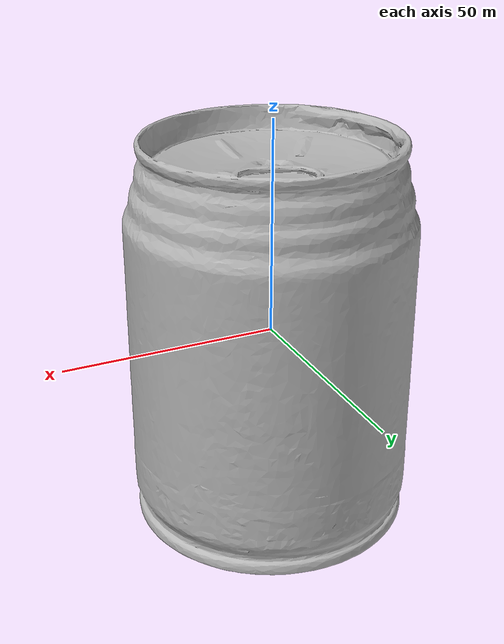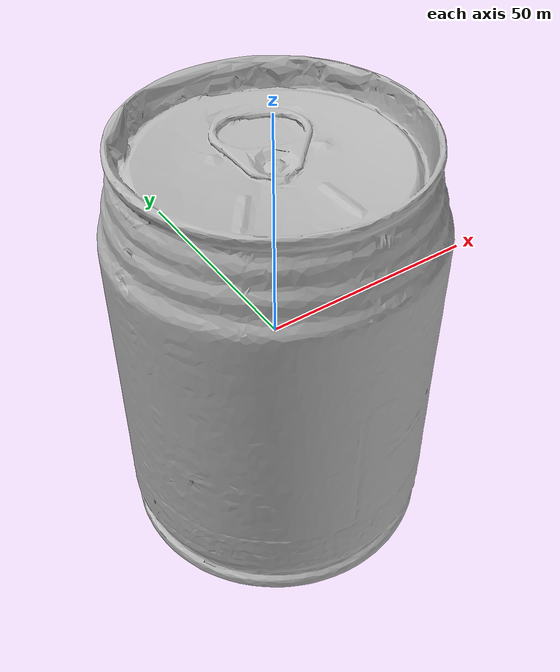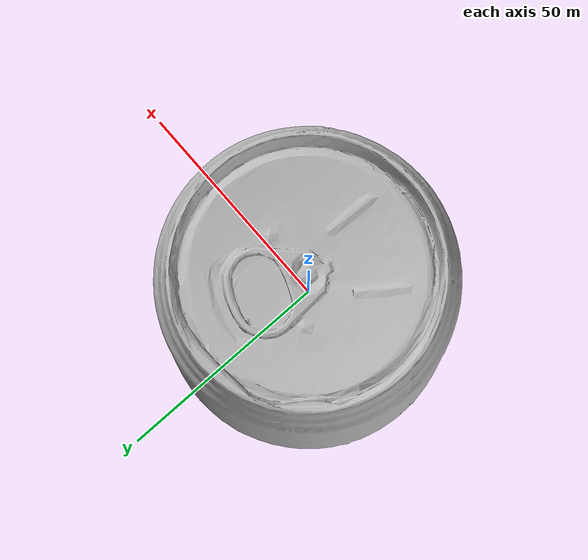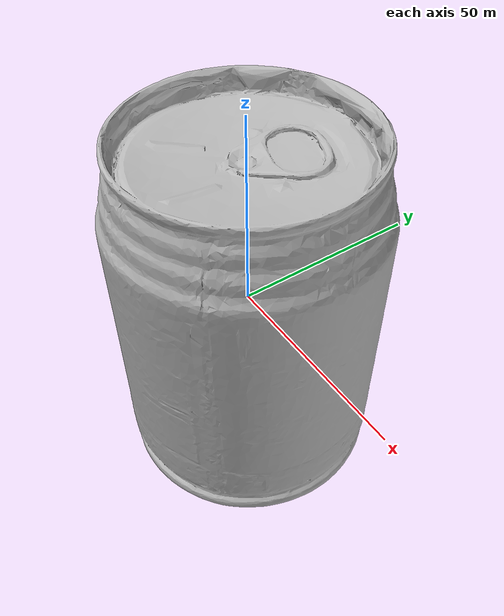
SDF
<sdf version="1.4">
 <world name="default">
  <light name="light1" type="point">
   <pose>0 0 1 0 0 0</pose>
   <diffuse>3 3 3 1</diffuse>
   <specular>3 3 3 1</specular>
  </light>
  <light name="light2" type="point">
   <pose>0 0.5 2 0 0 0</pose>
   <diffuse>1 1 1 1</diffuse>
   <specular>1 1 1 1</specular>
  </light>
  <light name="light3" type="point">
   <pose>0 0.5 2 0 0 0</pose>
   <diffuse>3 3 3 1</diffuse>
   <specular>3 3 3 1</specular>
  </light>
  <scene><ambient>0.7 0.7 0.7</ambient></scene>
  <model name="box2">
   <link name="link_box2">
    <collision name="default">
     <geometry>
      <mesh><uri>model://wooden_puzzle2/collision_meshes/collision.obj</uri><scale>1.0 1.0 1.0</scale></mesh>
     </geometry>
     <surface>
      <friction><ode><mu>0.5</mu><mu2>0.5</mu2></ode></friction>
      <contact><ode><max_vel>0</max_vel><min_depth>0.0001</min_depth><kp>1e8</kp></ode></contact>
     </surface>
    </collision>
    <visual name="default">
     <geometry>
      <mesh><uri>model://wooden_puzzle2/visual_meshes/visual.dae</uri><scale>1.0 1.0 1.0</scale></mesh>
     </geometry>
    </visual>
    <inertial>
     <mass>0.03464552015066147</mass>
     <pose>2.7402536943554878e-05 4.997663199901581e-05 6.587122334167361e-05 -0.1920274284601778 0.6112817660648215 -0.6338676817937987</pose>
     <inertia>
      <ixx>6.440233e-06</ixx>
      <iyy>6.6177017e-06</iyy>
      <izz>6.52356e-06</izz>
      <ixy>0</ixy>
      <ixz>0</ixz>
      <iyz>0</iyz>
     </inertia>
    </inertial>
   </link>
   <pose>-0.030575070530176163 0.2506757974624634 0.01691773347556591 0.020848608998721364 0.0007208131842217142 -1.1631901356984315</pose>
  </model>
  <model name="box3">
   <link name="link_box3">
    <collision name="default">
     <geometry>
      <mesh><uri>model://wooden_puzzle1/collision_meshes/collision.obj</uri><scale>1.0 1.0 1.0</scale></mesh>
     </geometry>
     <surface>
      <friction><ode><mu>0.5</mu><mu2>0.5</mu2></ode></friction>
      <contact><ode><max_vel>0</max_vel><min_depth>0.0001</min_depth><kp>1e8</kp></ode></contact>
     </surface>
    </collision>
    <visual name="default">
     <geometry>
      <mesh><uri>model://wooden_puzzle1/visual_meshes/visual.dae</uri><scale>1.0 1.0 1.0</scale></mesh>
     </geometry>
    </visual>
    <inertial>
     <mass>0.03424873203039169</mass>
     <pose>-0.0001735068071866408 7.97226166469045e-05 -9.191554272547364e-05 -0.07784599296854997 -0.2636133645981781 -0.5528677830585703</pose>
     <inertia>
      <ixx>6.4618e-06</ixx>
      <iyy>6.3374077e-06</iyy>
      <izz>6.413012e-06</izz>
      <ixy>0</ixy>
      <ixz>0</ixz>
      <iyz>0</iyz>
     </inertia>
    </inertial>
   </link>
   <pose>0.2830319106578827 -0.38294753432273865 0.016802020370960236 0.010512313623121747 -0.00945548456219424 1.5522622323072788</pose>
  </model>
  <model name="can1">
   <link name="link_can1">
    <collision name="default">
     <geometry>
      <mesh><uri>model://pepsi/collision_meshes/collision.obj</uri><scale>1.0 1.0 1.0</scale></mesh>
     </geometry>
     <surface>
      <friction><ode><mu>0.5</mu><mu2>0.5</mu2></ode></friction>
      <contact><ode><max_vel>0</max_vel><min_depth>0.0001</min_depth><kp>1e8</kp></ode></contact>
     </surface>
    </collision>
    <visual name="default">
     <geometry><mesh><uri>model://pepsi/visual_meshes/visual.dae</uri><scale>1.0 1.0 1.0</scale></mesh></geometry>
    </visual>
    <inertial>
     <mass>0.3250696361064911</mass>
     <pose>-7.5590331107378e-05 2.99312814604491e-05 -0.0003384356386959553 -0.0010678660158137958 -0.0021735266966629516 0.5674177426725915</pose>
     <inertia>
      <ixx>0.0006476009</ixx>
      <iyy>0.0006471292</iyy>
      <izz>0.00013783273</izz>
      <ixy>0</ixy>
      <ixz>0</ixz>
      <iyz>0</iyz>
     </inertia>
    </inertial>
   </link>
   <pose>-0.0705021321773529 0.22620080411434174 0.07449635863304138 -1.7751441978530096e-05 2.1753775373781173e-06 -2.7370475185845633</pose>
  </model>
  <model name="can2">
   <link name="link_can2">
    <collision name="default">
     <geometry>
      <mesh><uri>model://redbull/collision_meshes/collision.obj</uri><scale>1.0 1.0 1.0</scale></mesh>
     </geometry>
     <surface>
      <friction><ode><mu>0.5</mu><mu2>0.5</mu2></ode></friction>
      <contact><ode><max_vel>0</max_vel><min_depth>0.0001</min_depth><kp>1e8</kp></ode></contact>
     </surface>
    </collision>
    <visual name="default">
     <geometry>
      <mesh><uri>model://redbull/visual_meshes/visual.dae</uri><scale>1.0 1.0 1.0</scale></mesh>
     </geometry>
    </visual>
    <inertial>
     <mass>0.28235653042793274</mass>
     <pose>-2.2127058400656097e-05 -0.00012659600179176778 -0.0006860987632535398 0.0011377565977294822 -0.010800863454111471 0.5858141898730843</pose>
     <inertia>
      <ixx>0.0002654759</ixx>
      <iyy>0.0002657</iyy>
      <izz>0.00015754026</izz>
      <ixy>0</ixy>
      <ixz>0</ixz>
      <iyz>0</iyz>
     </inertia>
    </inertial>
   </link>
   <pose>0.06462572515010834 -0.0404021181166172 0.046385638415813446 -0.010489006096721723 0.007261518332690828 -3.07976048295672</pose>
  </model>
  <physics type="ode">
   <max_contacts>50</max_contacts>
   <ode>
    <solver><type>quick</type><iters>75</iters></solver>
    <constraints>
     <contact_max_correcting_vel>0</contact_max_correcting_vel>
     <contact_surface_layer>0</contact_surface_layer>
    </constraints>
   </ode>
  </physics>
 </world>
</sdf>
